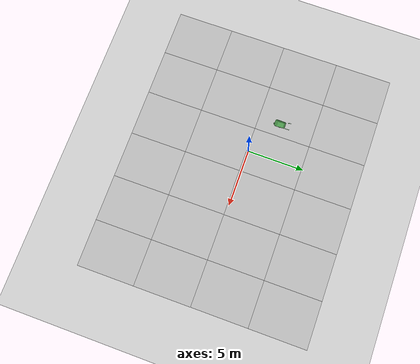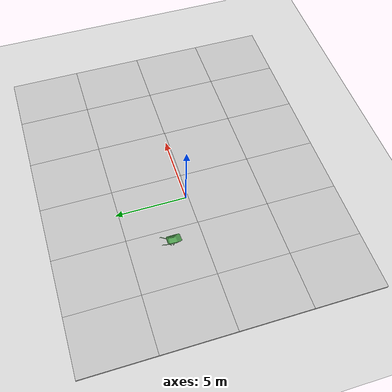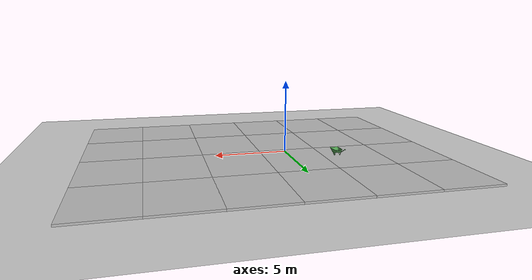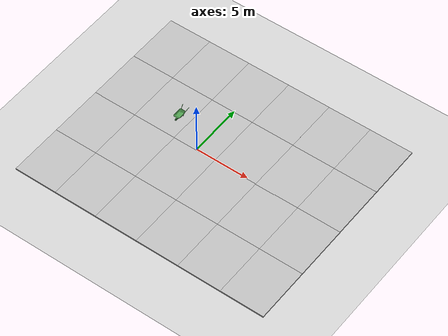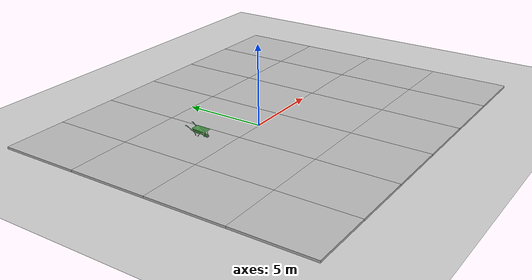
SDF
<sdf version="1.7">
 <world name="default">
  <light name="sun" type="directional">
   <pose>0 0 10 0 -0 0</pose>
   <diffuse>0.8 0.8 0.8 1</diffuse>
   <specular>0.1 0.1 0.1 1</specular>
   <attenuation>
    <range>1000</range>
    <constant>0.9</constant>
    <linear>0.01</linear>
    <quadratic>0.001</quadratic>
   </attenuation>
   <direction>-0.5 0.5 -1</direction>
   <spot><inner_angle>0</inner_angle><outer_angle>0</outer_angle><falloff>0</falloff></spot>
  </light>
  <model name="ground_plane">
   <static>1</static>
   <link name="link">
    <collision name="collision">
     <geometry><plane><normal>0 0 1</normal><size>100 100</size></plane></geometry>
     <surface><friction><ode><mu>100</mu><mu2>50</mu2></ode></friction></surface>
    </collision>
    <visual name="visual">
     <cast_shadows>0</cast_shadows>
     <geometry><plane><normal>0 0 1</normal><size>100 100</size></plane></geometry>
     <material>
      <script><uri>file://media/materials/scripts/gazebo.material</uri><name>Gazebo/Grey</name></script>
     </material>
    </visual>
   </link>
  </model>
  <gravity>0 0 -9.8</gravity>
  <magnetic_field>6e-06 2.3e-05 -4.2e-05</magnetic_field>
  <atmosphere type="adiabatic"/>
  <physics name="default_physics" default="0" type="ode">
   <max_step_size>0.001</max_step_size>
   <real_time_factor>1</real_time_factor>
   <real_time_update_rate>1000</real_time_update_rate>
  </physics>
  <scene><ambient>0.4 0.4 0.4 1</ambient><background>0.7 0.7 0.7 1</background><shadows>1</shadows></scene>
  <spherical_coordinates>
   <surface_model>EARTH_WGS84</surface_model>
   <latitude_deg>0</latitude_deg>
   <longitude_deg>0</longitude_deg>
   <elevation>0</elevation>
   <heading_deg>0</heading_deg>
  </spherical_coordinates>
  <model name="mud_box">
   <static>1</static>
   <link name="link">
    <collision name="collision"><geometry><box><size>8 10 0.2</size></box></geometry></collision>
    <visual name="visual_1">
     <pose>-2 2.5 0 0 -0 0</pose>
     <cast_shadows>0</cast_shadows>
     <geometry><box><size>4 5 0.2</size></box></geometry>
     <material>
      <script>
       <uri>model://mud_box/materials/scripts</uri>
       <uri>model://mud_box/materials/textures</uri>
       <name>vrc/mud</name>
      </script>
     </material>
    </visual>
    <visual name="visual_2">
     <pose>2 2.5 0 0 -0 0</pose>
     <cast_shadows>0</cast_shadows>
     <geometry><box><size>4 5 0.2</size></box></geometry>
     <material>
      <script>
       <uri>model://mud_box/materials/scripts</uri>
       <uri>model://mud_box/materials/textures</uri>
       <name>vrc/mud</name>
      </script>
     </material>
    </visual>
    <visual name="visual_3">
     <pose>2 -2.5 0 0 -0 0</pose>
     <cast_shadows>0</cast_shadows>
     <geometry><box><size>4 5 0.2</size></box></geometry>
     <material>
      <script>
       <uri>model://mud_box/materials/scripts</uri>
       <uri>model://mud_box/materials/textures</uri>
       <name>vrc/mud</name>
      </script>
     </material>
    </visual>
    <visual name="visual_4">
     <pose>-2 -2.5 0 0 -0 0</pose>
     <cast_shadows>0</cast_shadows>
     <geometry><box><size>4 5 0.2</size></box></geometry>
     <material>
      <script>
       <uri>model://mud_box/materials/scripts</uri>
       <uri>model://mud_box/materials/textures</uri>
       <name>vrc/mud</name>
      </script>
     </material>
    </visual>
   </link>
   <pose>-6.12765 4.83622 0 0 -0 0</pose>
  </model>
  <model name="mud_box_0">
   <static>1</static>
   <link name="link">
    <collision name="collision"><geometry><box><size>8 10 0.2</size></box></geometry></collision>
    <visual name="visual_1">
     <pose>-2 2.5 0 0 -0 0</pose>
     <cast_shadows>0</cast_shadows>
     <geometry><box><size>4 5 0.2</size></box></geometry>
     <material>
      <script>
       <uri>model://mud_box/materials/scripts</uri>
       <uri>model://mud_box/materials/textures</uri>
       <name>vrc/mud</name>
      </script>
     </material>
    </visual>
    <visual name="visual_2">
     <pose>2 2.5 0 0 -0 0</pose>
     <cast_shadows>0</cast_shadows>
     <geometry><box><size>4 5 0.2</size></box></geometry>
     <material>
      <script>
       <uri>model://mud_box/materials/scripts</uri>
       <uri>model://mud_box/materials/textures</uri>
       <name>vrc/mud</name>
      </script>
     </material>
    </visual>
    <visual name="visual_3">
     <pose>2 -2.5 0 0 -0 0</pose>
     <cast_shadows>0</cast_shadows>
     <geometry><box><size>4 5 0.2</size></box></geometry>
     <material>
      <script>
       <uri>model://mud_box/materials/scripts</uri>
       <uri>model://mud_box/materials/textures</uri>
       <name>vrc/mud</name>
      </script>
     </material>
    </visual>
    <visual name="visual_4">
     <pose>-2 -2.5 0 0 -0 0</pose>
     <cast_shadows>0</cast_shadows>
     <geometry><box><size>4 5 0.2</size></box></geometry>
     <material>
      <script>
       <uri>model://mud_box/materials/scripts</uri>
       <uri>model://mud_box/materials/textures</uri>
       <name>vrc/mud</name>
      </script>
     </material>
    </visual>
   </link>
   <pose>1.86767 4.83104 0 0 -0 0</pose>
  </model>
  <model name="mud_box_1">
   <static>1</static>
   <link name="link">
    <collision name="collision"><geometry><box><size>8 10 0.2</size></box></geometry></collision>
    <visual name="visual_1">
     <pose>-2 2.5 0 0 -0 0</pose>
     <cast_shadows>0</cast_shadows>
     <geometry><box><size>4 5 0.2</size></box></geometry>
     <material>
      <script>
       <uri>model://mud_box/materials/scripts</uri>
       <uri>model://mud_box/materials/textures</uri>
       <name>vrc/mud</name>
      </script>
     </material>
    </visual>
    <visual name="visual_2">
     <pose>2 2.5 0 0 -0 0</pose>
     <cast_shadows>0</cast_shadows>
     <geometry><box><size>4 5 0.2</size></box></geometry>
     <material>
      <script>
       <uri>model://mud_box/materials/scripts</uri>
       <uri>model://mud_box/materials/textures</uri>
       <name>vrc/mud</name>
      </script>
     </material>
    </visual>
    <visual name="visual_3">
     <pose>2 -2.5 0 0 -0 0</pose>
     <cast_shadows>0</cast_shadows>
     <geometry><box><size>4 5 0.2</size></box></geometry>
     <material>
      <script>
       <uri>model://mud_box/materials/scripts</uri>
       <uri>model://mud_box/materials/textures</uri>
       <name>vrc/mud</name>
      </script>
     </material>
    </visual>
    <visual name="visual_4">
     <pose>-2 -2.5 0 0 -0 0</pose>
     <cast_shadows>0</cast_shadows>
     <geometry><box><size>4 5 0.2</size></box></geometry>
     <material>
      <script>
       <uri>model://mud_box/materials/scripts</uri>
       <uri>model://mud_box/materials/textures</uri>
       <name>vrc/mud</name>
      </script>
     </material>
    </visual>
   </link>
   <pose>-6.12792 -5.13998 0 0 -0 0</pose>
  </model>
  <model name="mud_box_2">
   <static>1</static>
   <link name="link">
    <collision name="collision"><geometry><box><size>8 10 0.2</size></box></geometry></collision>
    <visual name="visual_1">
     <pose>-2 2.5 0 0 -0 0</pose>
     <cast_shadows>0</cast_shadows>
     <geometry><box><size>4 5 0.2</size></box></geometry>
     <material>
      <script>
       <uri>model://mud_box/materials/scripts</uri>
       <uri>model://mud_box/materials/textures</uri>
       <name>vrc/mud</name>
      </script>
     </material>
    </visual>
    <visual name="visual_2">
     <pose>2 2.5 0 0 -0 0</pose>
     <cast_shadows>0</cast_shadows>
     <geometry><box><size>4 5 0.2</size></box></geometry>
     <material>
      <script>
       <uri>model://mud_box/materials/scripts</uri>
       <uri>model://mud_box/materials/textures</uri>
       <name>vrc/mud</name>
      </script>
     </material>
    </visual>
    <visual name="visual_3">
     <pose>2 -2.5 0 0 -0 0</pose>
     <cast_shadows>0</cast_shadows>
     <geometry><box><size>4 5 0.2</size></box></geometry>
     <material>
      <script>
       <uri>model://mud_box/materials/scripts</uri>
       <uri>model://mud_box/materials/textures</uri>
       <name>vrc/mud</name>
      </script>
     </material>
    </visual>
    <visual name="visual_4">
     <pose>-2 -2.5 0 0 -0 0</pose>
     <cast_shadows>0</cast_shadows>
     <geometry><box><size>4 5 0.2</size></box></geometry>
     <material>
      <script>
       <uri>model://mud_box/materials/scripts</uri>
       <uri>model://mud_box/materials/textures</uri>
       <name>vrc/mud</name>
      </script>
     </material>
    </visual>
   </link>
   <pose>1.85975 -5.14192 0 0 -0 0</pose>
  </model>
  <model name="mud_box_0_clone">
   <static>1</static>
   <link name="link">
    <collision name="collision"><geometry><box><size>8 10 0.2</size></box></geometry></collision>
    <visual name="visual_1">
     <pose>-2 2.5 0 0 -0 0</pose>
     <cast_shadows>0</cast_shadows>
     <geometry><box><size>4 5 0.2</size></box></geometry>
     <material>
      <script>
       <uri>model://mud_box/materials/scripts</uri>
       <uri>model://mud_box/materials/textures</uri>
       <name>vrc/mud</name>
      </script>
     </material>
    </visual>
    <visual name="visual_2">
     <pose>2 2.5 0 0 -0 0</pose>
     <cast_shadows>0</cast_shadows>
     <geometry><box><size>4 5 0.2</size></box></geometry>
     <material>
      <script>
       <uri>model://mud_box/materials/scripts</uri>
       <uri>model://mud_box/materials/textures</uri>
       <name>vrc/mud</name>
      </script>
     </material>
    </visual>
    <visual name="visual_3">
     <pose>2 -2.5 0 0 -0 0</pose>
     <cast_shadows>0</cast_shadows>
     <geometry><box><size>4 5 0.2</size></box></geometry>
     <material>
      <script>
       <uri>model://mud_box/materials/scripts</uri>
       <uri>model://mud_box/materials/textures</uri>
       <name>vrc/mud</name>
      </script>
     </material>
    </visual>
    <visual name="visual_4">
     <pose>-2 -2.5 0 0 -0 0</pose>
     <cast_shadows>0</cast_shadows>
     <geometry><box><size>4 5 0.2</size></box></geometry>
     <material>
      <script>
       <uri>model://mud_box/materials/scripts</uri>
       <uri>model://mud_box/materials/textures</uri>
       <name>vrc/mud</name>
      </script>
     </material>
    </visual>
   </link>
   <pose>9.85757 -5.14216 0 0 -0 0</pose>
  </model>
  <model name="mud_box_3">
   <static>1</static>
   <link name="link">
    <collision name="collision"><geometry><box><size>8 10 0.2</size></box></geometry></collision>
    <visual name="visual_1">
     <pose>-2 2.5 0 0 -0 0</pose>
     <cast_shadows>0</cast_shadows>
     <geometry><box><size>4 5 0.2</size></box></geometry>
     <material>
      <script>
       <uri>model://mud_box/materials/scripts</uri>
       <uri>model://mud_box/materials/textures</uri>
       <name>vrc/mud</name>
      </script>
     </material>
    </visual>
    <visual name="visual_2">
     <pose>2 2.5 0 0 -0 0</pose>
     <cast_shadows>0</cast_shadows>
     <geometry><box><size>4 5 0.2</size></box></geometry>
     <material>
      <script>
       <uri>model://mud_box/materials/scripts</uri>
       <uri>model://mud_box/materials/textures</uri>
       <name>vrc/mud</name>
      </script>
     </material>
    </visual>
    <visual name="visual_3">
     <pose>2 -2.5 0 0 -0 0</pose>
     <cast_shadows>0</cast_shadows>
     <geometry><box><size>4 5 0.2</size></box></geometry>
     <material>
      <script>
       <uri>model://mud_box/materials/scripts</uri>
       <uri>model://mud_box/materials/textures</uri>
       <name>vrc/mud</name>
      </script>
     </material>
    </visual>
    <visual name="visual_4">
     <pose>-2 -2.5 0 0 -0 0</pose>
     <cast_shadows>0</cast_shadows>
     <geometry><box><size>4 5 0.2</size></box></geometry>
     <material>
      <script>
       <uri>model://mud_box/materials/scripts</uri>
       <uri>model://mud_box/materials/textures</uri>
       <name>vrc/mud</name>
      </script>
     </material>
    </visual>
   </link>
   <pose>9.84986 4.82173 0 0 -0 0</pose>
  </model>
  <audio><device>default</device></audio>
  <model name="wheelbarrow_0">
   <link name="link_1">
    <pose>-0.00034 0 0 1.57051 -0 0</pose>
    <visual name="visual">
     <geometry><mesh><uri>model://10-wheelbarrow/wheelbarrow.obj</uri><scale>2 2 2</scale></mesh></geometry>
     <material>
      <lighting>1</lighting>
      <ambient>0.2 0.4 0.2 1</ambient>
      <diffuse>0.3 0.6 0.3 1</diffuse>
      <specular>0.2 0.5 0.2 1</specular>
      <emissive>0 0 0 1</emissive>
     </material>
    </visual>
    <collision name="collision">
     <geometry><mesh><uri>model://10-wheelbarrow/wheelbarrow.obj</uri><scale>2 2 2</scale></mesh></geometry>
    </collision>
   </link>
   <static>1</static>
   <pose>-3.07344 1.86045 0 0 -0 0</pose>
  </model>
 </world>
</sdf>
